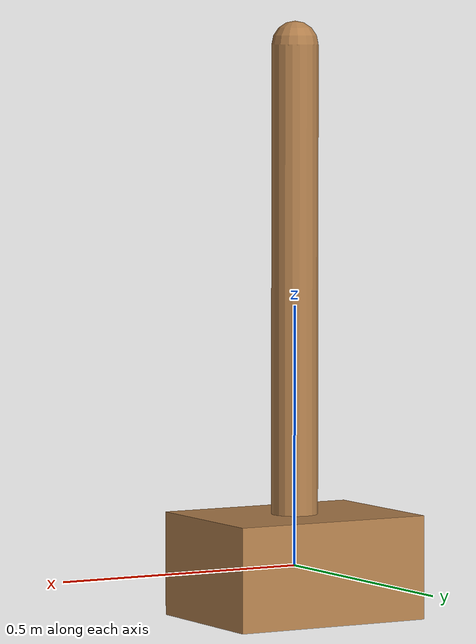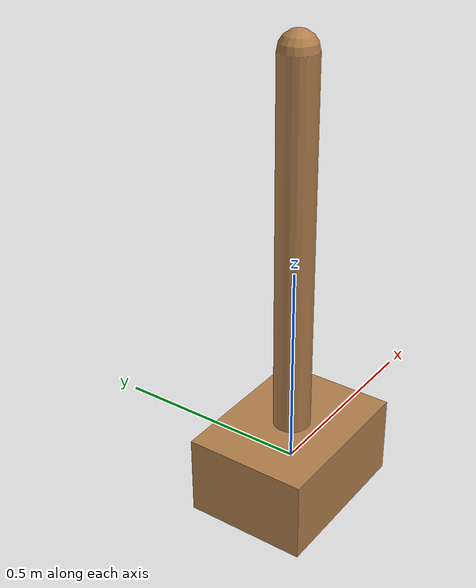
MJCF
<mujoco model="cartpole">
<!-- Copyright (c) 2023 Robotics and AI Institute LLC dba RAI Institute. All rights reserved. -->

  <asset>
    <texture name="blue_grid" type="2d" builtin="checker" rgb1=".02 .14 .44" rgb2=".27 .55 1" width="300" height="300" mark="edge" markrgb="1 1 1"/>
    <material name="blue_grid" texture="blue_grid" texrepeat="1 1" texuniform="true" reflectance=".2"/>
    <material name="beige" rgba=".7 .5 .3 1"/>
  </asset>

  <option timestep="0.04">
    <flag contact="disable"/>
  </option>

  <default>
    <default class="cart">
      <joint damping="10" type="slide" axis="1 0 0" range="-1.8 1.8" />
      <position kp="100" ctrlrange="-1.8 1.8" forcerange="-10 10"/>
    </default>
    <default class="pole">
      <joint damping="0" type="hinge" axis="0 1 0"/>
      <geom type="capsule" fromto="0 0 0 0 0 1" size="0.045" material="beige" mass=".1"/>
    </default>
  </default>

  <worldbody>
    <body name="cart" pos="0 0 0">
      <joint name="joint_cart" class="cart" />
      <geom name="cart" type="box" size="0.2 0.15 0.1" material="beige"  mass="1"/>
      <site name="trace_cart" pos="0 0 0" size="0.01"/>
      <body name="pole" childclass="pole">
        <joint name="joint_pole" class="pole"/>
        <geom name="pole"/>
        <site name="trace_pole" pos="0 0 1" size="0.01"/>
      </body>
    </body>
  </worldbody>

  <actuator>
    <position name="actuator_cart" joint="joint_cart" class="cart" />
  </actuator>

  <sensor>
    <framepos name="trace_cart" objtype="site" objname="trace_cart" />
    <framepos name="trace_pole" objtype="site" objname="trace_pole" />
  </sensor>

</mujoco>
